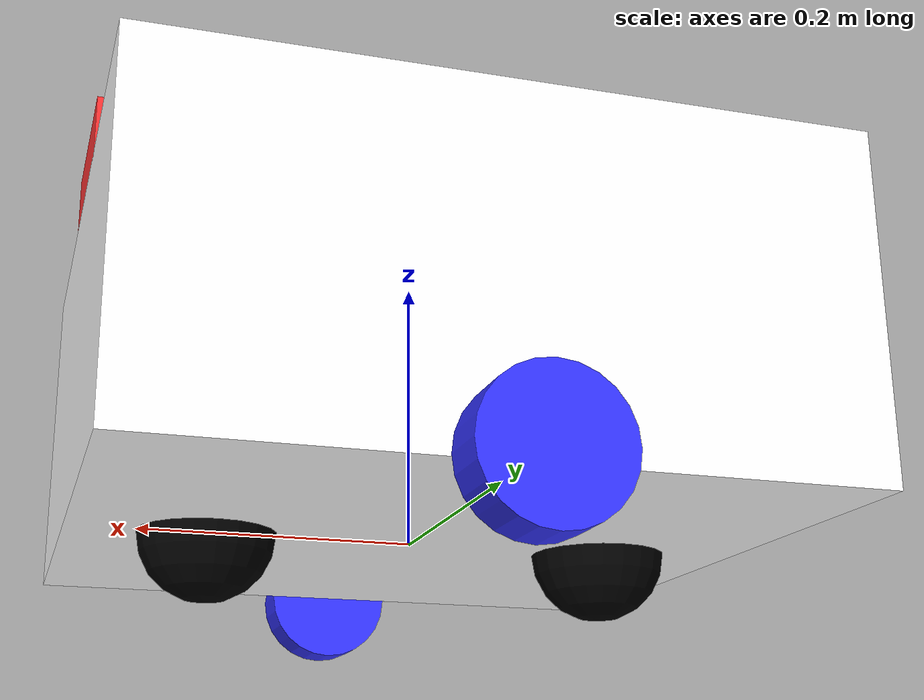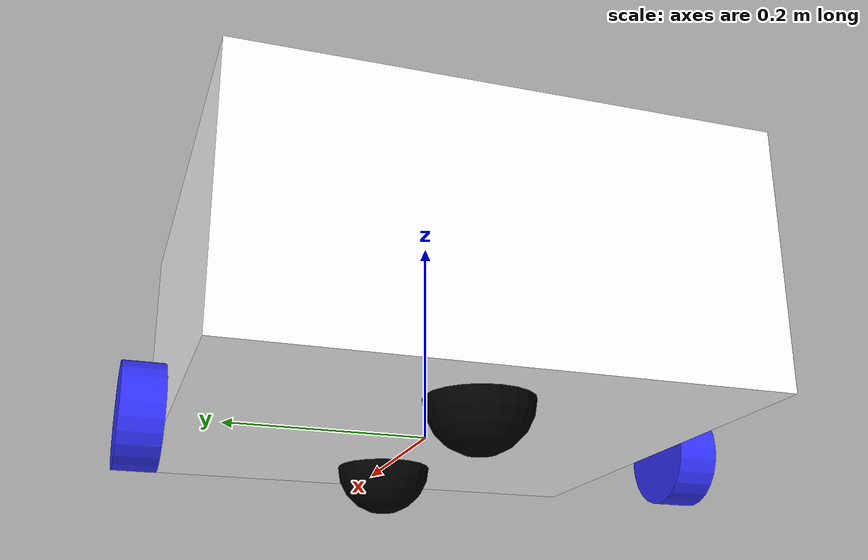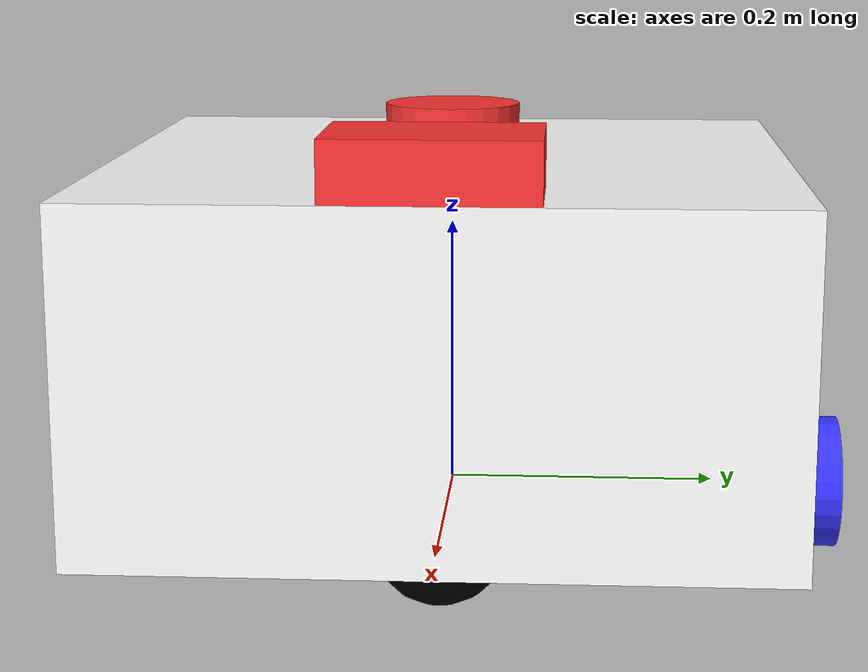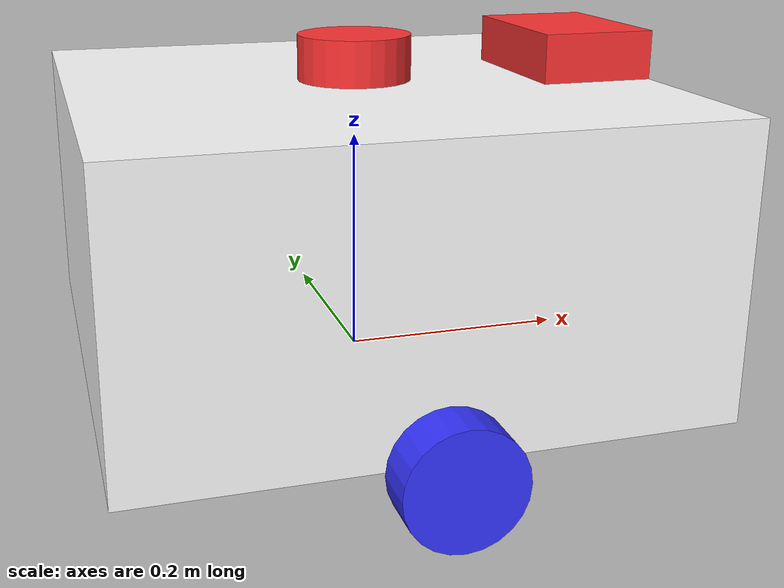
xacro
<?xml version="1.0"?>
<robot xmlns:xacro="http://www.ros.org/wiki/xacro"  name="robot">

    <!-- Example link -->

    <xacro:include filename="robot_core.xacro" />

    <xacro:include filename="gazebo_control.xacro" />

    <xacro:include filename="lidar.xacro" />

    <xacro:include filename="camera.xacro" />

</robot>

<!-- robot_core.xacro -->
<robot xmlns:xacro="http://www.ros.org/wiki/xacro">

    <material name="white">
        <color rgba="1 1 1 1" />
    </material>

    <material name="orange">
        <color rgba="1 0.3 0.1 1" />
    </material>

    <material name="blue">
        <color rgba="0.2 0.2 1 1" />
    </material>

    <material name="black">
        <color rgba="0 0 0 1" />
    </material>

    <material name="red">
        <color rgba="1 0.2 0.2 1" />
    </material>

    <!-- BASE LINK -->

    <link name="base_link">

    </link>

    <!-- CHASSIS -->

    <joint name="chassis" type="fixed">
        <parent link="base_link" />
        <child link="chassis" />
        <origin xyz="-0.25 0 0" />
    </joint>

    <link name="chassis">
        <visual>
            <origin xyz= "0.25 0 0.125" />
            <geometry>
                <box size="0.5 0.5 0.25" />
            </geometry>
            <material name="white" />
        </visual>
        <collision>
            <origin xyz= "0.25 0 0.125" />
            <geometry>
                <box size="0.5 0.5 0.25" />
            </geometry>
            <material name="white" />
        </collision>
        <inertial>
            <origin xyz="0.25 0 0.125"/>
            <mass value="10"/>
            <inertia ixx="0.26042" ixy="0" ixz="0" iyy="0.26042" iyz="0" izz="0.41667"/>
        </inertial>
    </link>

    <gazebo reference="chassis">
        <material>Gazebo/White</material>
    </gazebo>

    <!-- WHEEL LINK -->

    <joint name="left_wheel_joint" type="continuous">
        <parent link="base_link" />
        <child link="left_wheel" />
        <origin xyz="0 0.275 0" rpy="-${pi/2} 0 0" />
        <axis xyz= "0 0 1" />
    </joint>

    <link name="left_wheel">
        <visual>
            <geometry>
                <cylinder radius="0.05" length="0.04" />
            </geometry>
            <material name="blue" />
        </visual>
        <collision>
            <geometry>
                <cylinder radius="0.05" length="0.04" />
            </geometry>
            <material name="blue" />
        </collision>
        <inertial>
            <mass value="1.5"/>
            <inertia ixx="0.00114" ixy="0" ixz="0" iyy="0.00114" iyz="0" izz="0.00188"/>
        </inertial>
    </link>

    <gazebo reference="left_wheel">
        <material>Gazebo/Blue</material>
    </gazebo>

    <joint name="right_wheel_joint" type="continuous">
        <parent link="base_link" />
        <child link="right_wheel" />
        <origin xyz="0 -0.275 0" rpy="${pi/2} 0 0" />
        <axis xyz= "0 0 -1" />
    </joint>

    <link name="right_wheel">
        <visual>
            <geometry>
                <cylinder radius="0.05" length="0.04" />
            </geometry>
            <material name="blue" />
        </visual>
        <collision>
            <geometry>
                <cylinder radius="0.05" length="0.04" />
            </geometry>
            <material name="blue" />
        </collision>
        <inertial>
            <mass value="1.5"/>
            <inertia ixx="0.00114" ixy="0" ixz="0" iyy="0.00114" iyz="0" izz="0.00188"/>
        </inertial>
    </link>

    <gazebo reference="right_wheel">
        <material>Gazebo/Blue</material>
    </gazebo>

    <!-- CASTER WHEEL LINK -->

    <joint name="front_caster_wheel_joint" type="fixed">
        <parent link="chassis" />
        <child link="front_caster_wheel" />
        <origin xyz="0.1 0 0" />
    </joint>

    <link name="front_caster_wheel">
        <visual>
            <geometry>
                <sphere radius="0.05" />
            </geometry>
            <material name="black" />
        </visual>
        <collision>
            <geometry>
                <sphere radius="0.05" />
            </geometry>
            <material name="black" />
        </collision>
        <inertial>
            <mass value="1.5"/>
            <inertia ixx="0.15" ixy="0" ixz="0" iyy="0.15" iyz="0" izz="0.15"/>
        </inertial>
    </link>

    <gazebo reference="front_caster_wheel">
        <material>Gazebo/Black</material>
        <mu1>0.001</mu1>
        <mu2>0.001</mu2>
    </gazebo>

    <joint name="rear_caster_wheel_joint" type="fixed">
        <parent link="chassis" />
        <child link="rear_caster_wheel" />
        <origin xyz="0.4 0 0" />
    </joint>

    <link name="rear_caster_wheel">
        <visual>
            <geometry>
                <sphere radius="0.05" />
            </geometry>
            <material name="black" />
        </visual>
        <collision>
            <geometry>
                <sphere radius="0.05" />
            </geometry>
            <material name="black" />
        </collision>
        <inertial>
            <mass value="1.5"/>
            <inertia ixx="0.15" ixy="0" ixz="0" iyy="0.15" iyz="0" izz="0.15"/>
        </inertial>
    </link>

    <gazebo reference="rear_caster_wheel">
        <material>Gazebo/Black</material>
        <mu1>0.001</mu1>
        <mu2>0.001</mu2>
    </gazebo>

</robot>

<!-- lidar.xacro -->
<robot xmlns:xacro="http://www.ros.org/wiki/xacro">

    <joint name="lidar_joint" type="fixed">
        <parent link="chassis" />
        <child link="laser_frame" />
        <origin xyz="0.25 0 0.27" rpy="0 0 0" />
    </joint>

    <link name="laser_frame">
        <visual>
            <geometry>
                <cylinder radius="0.05" length="0.04" />
            </geometry>
            <material name="red" />
        </visual>
        <collision>
            <geometry>
                <cylinder radius="0.05" length="0.04" />
            </geometry>
            <material name="red" />
        </collision>
        <inertial>
            <mass value="1.5"/>
            <inertia ixx="0.00114" ixy="0" ixz="0" iyy="0.00114" iyz="0" izz="0.00188"/>
        </inertial>
    </link>

    <gazebo reference="laser_frame">
        <material>Gazebo/Red</material>
        <sensor name="laser" type="ray">
            <pose>0 0 0 0 0 0</pose>
            <visualize>true</visualize>
            <update_rate>10</update_rate>
            <ray>
                <scan>
                    <horizontal>
                        <samples>360</samples>
                        <resolution>1.0</resolution>
                        <min_angle>-3.14</min_angle>
                        <max_angle>3.14</max_angle>
                    </horizontal>
                </scan>
                <range>
                    <min>0.5</min>
                    <max>30.0</max>
                    <resolution>0.01</resolution>
                </range>
            </ray>
            <plugin name="laser_controller" filename="libgazebo_ros_ray_sensor.so">
                <ros>
                    <remapping>~/out:=scan</remapping>
                </ros>
                <output_type>sensor_msgs/LaserScan</output_type>
                <frame_name>laser_frame</frame_name>
            </plugin>
        </sensor>
    </gazebo>

</robot>

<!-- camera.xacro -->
<robot xmlns:xacro="http://www.ros.org/wiki/xacro">

    <joint name="camera_joint" type="fixed">
        <parent link="chassis"/>
        <child link="camera_link"/>
        <origin xyz="0.45 0 0.27" rpy="0 0 0"/>
    </joint>

    <link name="camera_link">
        <visual>
            <geometry>
                <box size="0.1 0.145 0.045"/>
            </geometry>
            <material name="red"/>
        </visual>
    </link>

    <joint name="camera_optical_joint" type="fixed">
        <parent link="camera_link"/>
        <child link="camera_link_optical"/>
        <origin xyz="0 0 0" rpy="${-pi/2} 0 ${-pi/2}"/>
    </joint>

    <link name="camera_link_optical"></link>

    <gazebo reference="camera_link">
        <material>Gazebo/Red</material>
        <sensor name="rgb_camera" type="camera">

            <update_rate>60</update_rate>
            <visualize>true</visualize>
            <camera>
                <horizontal_fov>1.518</horizontal_fov>
                <image>
                    <width>1280</width>
                    <height>800</height>
                    <format>R8G8B8</format>
                </image>
                <clip>
                    <near>0.01</near>
                    <far>100</far>
                </clip>
            </camera>
            <plugin name="camera_rgb_controller" filename="libgazebo_ros_camera.so">
                <frame_name>camera_link_optical</frame_name>
            </plugin>
        </sensor>
    </gazebo>

    <gazebo reference="camera_link">
        <material>Gazebo/Red</material>
        <sensor name="depth_camera" type="depth">

            <update_rate>30</update_rate>
            <visualize>true</visualize>
            <camera>
                <horizontal_fov>1.518</horizontal_fov>
                <image>
                    <width>1280</width>
                    <height>720</height>
                    <format>R8G8B8</format>
                </image>
                <clip>
                    <near>0.5</near>
                    <far>10</far>
                </clip>
            </camera>
            <plugin name="camera_depth_controller" filename="libgazebo_ros_camera.so">
                <frame_name>camera_link_optical</frame_name>
            </plugin>
        </sensor>
    </gazebo>

</robot>
